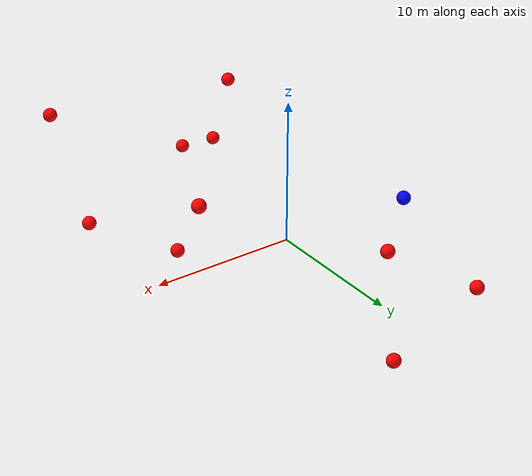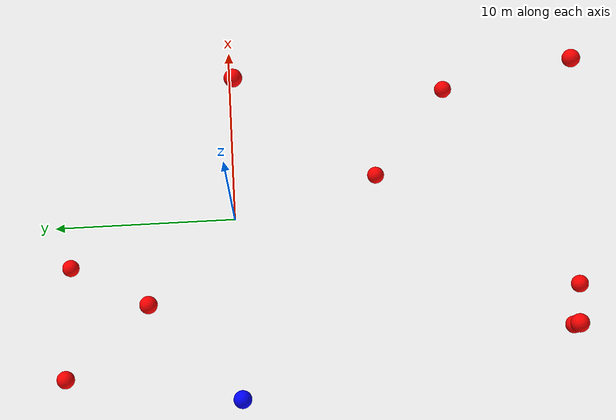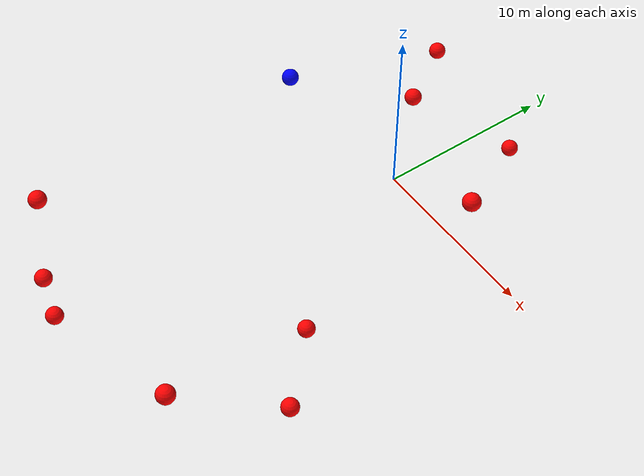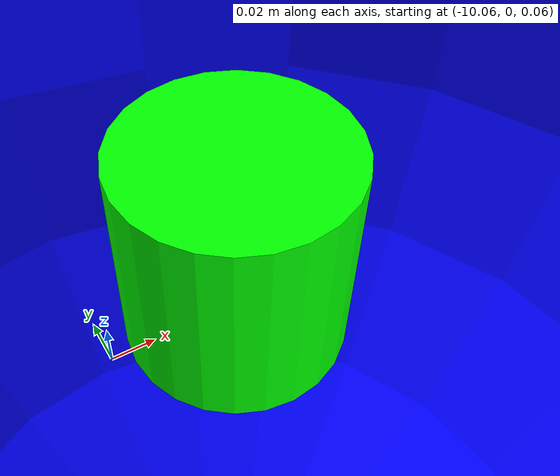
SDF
<?xml version="1.0" ?>
<sdf version="1.8">
    <world name="3d_world">
        <physics name="1ms" type="ode">
            <max_step_size>0.001</max_step_size>
            <real_time_factor>1.0</real_time_factor>
            <real_time_update_rate>1000.0</real_time_update_rate>
        </physics>
        <gravity>0 0 0</gravity>

        <plugin
            filename="gz-sim-physics-system"
            name="gz::sim::v8::systems::Physics">
        </plugin>
        <plugin
            filename="libignition-gazebo-user-commands-system.so"
            name="ignition::gazebo::systems::UserCommands">
        </plugin>
        <plugin
            filename="gz-sim-scene-broadcaster-system"
            name="gz::sim::systems::SceneBroadcaster">
        </plugin>
        <plugin
            filename="gz-sim-sensors-system"
            name="gz::sim::systems::Sensors">
            <render_engine>ogre2</render_engine>
        </plugin>

        <light type="directional" name="sun">
            <cast_shadows>true</cast_shadows>
            <pose>0 0 10 0 0 0</pose>
            <diffuse>0.8 0.8 0.8 1</diffuse>
            <specular>0.2 0.2 0.2 1</specular>
            <attenuation>
                <range>1000</range>
                <constant>0.9</constant>
                <linear>0.01</linear>
                <quadratic>0.001</quadratic>
            </attenuation>
            <direction>-0.5 0.1 -0.9</direction>
        </light>

        <!-- AGENTE -->
        <model name='agente' canonical_link='chassis'>
            <pose relative_to='world'>-10.0 0 0.0 0 0 0</pose>
            <link name='chassis'>
                <pose relative_to='__model__'>0.0 0 0.0 0 0 0</pose>
                <inertial>
                    <mass>1.14395</mass>
                    <inertia>
                        <ixx>0.095329</ixx>
                        <ixy>0</ixy>
                        <ixz>0</ixz>
                        <iyy>0.381317</iyy>
                        <iyz>0</iyz>
                        <izz>0.476646</izz>
                    </inertia>
                </inertial>
                <visual name='visual'>
                    <geometry>
                        <sphere>
                            <radius>0.5</radius>
                        </sphere>
                    </geometry>
                    <material>
                        <ambient>0.0 0.0 1.0 1</ambient>
                        <diffuse>0.0 0.0 1.0 1</diffuse>
                        <specular>0.0 0.0 1.0 1</specular>
                    </material>
                </visual>
                <collision name='collision'>
                    <geometry>
                        <sphere>
                            <radius>0.5</radius>
                        </sphere>
                    </geometry>
                </collision>
                <enable_gravity>false</enable_gravity>
            </link>

            <link name='lidar_link'>
                <pose relative_to='chassis'>0.0 0 0.1 0 0 0</pose>
                <inertial>
                    <mass>0.1</mass>
                    <inertia>
                        <ixx>0.000166667</ixx>
                        <iyy>0.000166667</iyy>
                        <izz>0.000166667</izz>
                    </inertia>
                </inertial>
                <collision name='collision'>
                    <geometry>
                        <cylinder>
                            <radius>0.05</radius>
                            <length>0.1</length>
                        </cylinder>
                    </geometry>
                </collision>
                <visual name='visual'>
                    <geometry>
                        <cylinder>
                            <radius>0.05</radius>
                            <length>0.1</length>
                        </cylinder>
                    </geometry>
                    <material>
                        <ambient>0.0 1.0 0.0 1</ambient>
                        <diffuse>0.0 1.0 0.0 1</diffuse>
                        <specular>0.0 1.0 0.0 1</specular>
                    </material>
                </visual>
                <sensor name="lidar" type="gpu_lidar">
                    <topic>scan</topic>
                    <update_rate>10</update_rate>
                    <lidar>
                        <scan>
                            <horizontal>
                                <samples>5000</samples>
                                <resolution>1</resolution>
                                <min_angle>-3.14159</min_angle>
                                <max_angle>3.14159</max_angle>
                            </horizontal>
                        </scan>
                        <range>
                            <min>0.1</min>
                            <max>10.0</max>
                            <resolution>0.01</resolution>
                        </range>
                    </lidar>
                    <visualize>true</visualize>
                    <always_on>true</always_on>
                    <update_rate>10</update_rate>
                    <pose_frame>lidar</pose_frame>
                </sensor>
                <enable_gravity>false</enable_gravity>
            </link>

            <joint name="lidar_joint" type="fixed">
                <parent>chassis</parent>
                <child>lidar_link</child>
            </joint>

            <plugin
                filename="ignition-gazebo-joint-state-publisher-system"
                name="ignition::gazebo::systems::JointStatePublisher">
            </plugin>
            <plugin
                filename="ignition-gazebo-odometry-publisher-system"
                name="ignition::gazebo::systems::OdometryPublisher">
                <dimensions>3</dimensions>
            </plugin>
            <plugin
                filename="ignition-gazebo-velocity-control-system"
                name="ignition::gazebo::systems::VelocityControl">
                <initial_linear>0.0 0 0</initial_linear>
                <initial_angular>0 0 0.0</initial_angular>
            </plugin>
            <plugin
                filename="libignition-gazebo-pose-publisher-system.so"
                name="ignition::gazebo::systems::PosePublisher">
                <topic>/agente/pose</topic>
                <frame_id>agente</frame_id>
                <update_rate>30</update_rate>
            </plugin>
        </model>

        <!-- OBSTACLE 1 -->
        <model name='obstacle_1' canonical_link='obstacle'>
            <static>false</static>
            <pose relative_to='world'>7.90 -12.49 -1.96 0 0 0</pose>
            <link name='obstacle'>
                <pose relative_to='__model__'>0.0 0 0.0 0 0 0</pose>
                <visual name='visual'>
                    <geometry>
                        <sphere>
                            <radius>0.50</radius>
                        </sphere>
                    </geometry>
                    <material>
                        <ambient>1.0 0.0 0.0 1</ambient>
                        <diffuse>1.0 0.0 0.0 1</diffuse>
                        <specular>1.0 0.0 0.0 1</specular>
                    </material>
                </visual>
                <collision name='collision'>
                    <geometry>
                        <sphere>
                            <radius>0.50</radius>
                        </sphere>
                    </geometry>
                </collision>
                <enable_gravity>false</enable_gravity>
            </link>

            <plugin
                filename="ignition-gazebo-velocity-control-system"
                name="ignition::gazebo::systems::VelocityControl">
                <initial_linear>-0.96 1.73 0.27</initial_linear>
                <initial_angular>0 0 0</initial_angular>
            </plugin>

            <plugin
                filename="ignition-gazebo-odometry-publisher-system"
                name="ignition::gazebo::systems::OdometryPublisher">
                <dimensions>3</dimensions>
            </plugin>
        </model>

        <!-- OBSTACLE 2 -->
        <model name='obstacle_2' canonical_link='obstacle'>
            <static>false</static>
            <pose relative_to='world'>-8.16 9.76 -1.67 0 0 0</pose>
            <link name='obstacle'>
                <pose relative_to='__model__'>0.0 0 0.0 0 0 0</pose>
                <visual name='visual'>
                    <geometry>
                        <sphere>
                            <radius>0.50</radius>
                        </sphere>
                    </geometry>
                    <material>
                        <ambient>1.0 0.0 0.0 1</ambient>
                        <diffuse>1.0 0.0 0.0 1</diffuse>
                        <specular>1.0 0.0 0.0 1</specular>
                    </material>
                </visual>
                <collision name='collision'>
                    <geometry>
                        <sphere>
                            <radius>0.50</radius>
                        </sphere>
                    </geometry>
                </collision>
                <enable_gravity>false</enable_gravity>
            </link>

            <plugin
                filename="ignition-gazebo-velocity-control-system"
                name="ignition::gazebo::systems::VelocityControl">
                <initial_linear>1.56 -1.23 0.21</initial_linear>
                <initial_angular>0 0 0</initial_angular>
            </plugin>

            <plugin
                filename="ignition-gazebo-odometry-publisher-system"
                name="ignition::gazebo::systems::OdometryPublisher">
                <dimensions>3</dimensions>
            </plugin>
        </model>

        <!-- OBSTACLE 3 -->
        <model name='obstacle_3' canonical_link='obstacle'>
            <static>false</static>
            <pose relative_to='world'>-1.14 10.00 -4.49 0 0 0</pose>
            <link name='obstacle'>
                <pose relative_to='__model__'>0.0 0 0.0 0 0 0</pose>
                <visual name='visual'>
                    <geometry>
                        <sphere>
                            <radius>0.50</radius>
                        </sphere>
                    </geometry>
                    <material>
                        <ambient>1.0 0.0 0.0 1</ambient>
                        <diffuse>1.0 0.0 0.0 1</diffuse>
                        <specular>1.0 0.0 0.0 1</specular>
                    </material>
                </visual>
                <collision name='collision'>
                    <geometry>
                        <sphere>
                            <radius>0.50</radius>
                        </sphere>
                    </geometry>
                </collision>
                <enable_gravity>false</enable_gravity>
            </link>

            <plugin
                filename="ignition-gazebo-velocity-control-system"
                name="ignition::gazebo::systems::VelocityControl">
                <initial_linear>1.02 -1.57 0.71</initial_linear>
                <initial_angular>0 0 0</initial_angular>
            </plugin>

            <plugin
                filename="ignition-gazebo-odometry-publisher-system"
                name="ignition::gazebo::systems::OdometryPublisher">
                <dimensions>3</dimensions>
            </plugin>
        </model>

        <!-- OBSTACLE 4 -->
        <model name='obstacle_4' canonical_link='obstacle'>
            <static>false</static>
            <pose relative_to='world'>6.62 -0.38 4.48 0 0 0</pose>
            <link name='obstacle'>
                <pose relative_to='__model__'>0.0 0 0.0 0 0 0</pose>
                <visual name='visual'>
                    <geometry>
                        <sphere>
                            <radius>0.50</radius>
                        </sphere>
                    </geometry>
                    <material>
                        <ambient>1.0 0.0 0.0 1</ambient>
                        <diffuse>1.0 0.0 0.0 1</diffuse>
                        <specular>1.0 0.0 0.0 1</specular>
                    </material>
                </visual>
                <collision name='collision'>
                    <geometry>
                        <sphere>
                            <radius>0.50</radius>
                        </sphere>
                    </geometry>
                </collision>
                <enable_gravity>false</enable_gravity>
            </link>

            <plugin
                filename="ignition-gazebo-velocity-control-system"
                name="ignition::gazebo::systems::VelocityControl">
                <initial_linear>-0.58 0.07 -0.83</initial_linear>
                <initial_angular>0 0 0</initial_angular>
            </plugin>

            <plugin
                filename="ignition-gazebo-odometry-publisher-system"
                name="ignition::gazebo::systems::OdometryPublisher">
                <dimensions>3</dimensions>
            </plugin>
        </model>

        <!-- OBSTACLE 5 -->
        <model name='obstacle_5' canonical_link='obstacle'>
            <static>false</static>
            <pose relative_to='world'>-7.44 -17.75 3.01 0 0 0</pose>
            <link name='obstacle'>
                <pose relative_to='__model__'>0.0 0 0.0 0 0 0</pose>
                <visual name='visual'>
                    <geometry>
                        <sphere>
                            <radius>0.50</radius>
                        </sphere>
                    </geometry>
                    <material>
                        <ambient>1.0 0.0 0.0 1</ambient>
                        <diffuse>1.0 0.0 0.0 1</diffuse>
                        <specular>1.0 0.0 0.0 1</specular>
                    </material>
                </visual>
                <collision name='collision'>
                    <geometry>
                        <sphere>
                            <radius>0.50</radius>
                        </sphere>
                    </geometry>
                </collision>
                <enable_gravity>false</enable_gravity>
            </link>

            <plugin
                filename="ignition-gazebo-velocity-control-system"
                name="ignition::gazebo::systems::VelocityControl">
                <initial_linear>0.94 1.74 -0.30</initial_linear>
                <initial_angular>0 0 0</initial_angular>
            </plugin>

            <plugin
                filename="ignition-gazebo-odometry-publisher-system"
                name="ignition::gazebo::systems::OdometryPublisher">
                <dimensions>3</dimensions>
            </plugin>
        </model>

        <!-- OBSTACLE 6 -->
        <model name='obstacle_6' canonical_link='obstacle'>
            <static>false</static>
            <pose relative_to='world'>-4.56 4.94 -0.06 0 0 0</pose>
            <link name='obstacle'>
                <pose relative_to='__model__'>0.0 0 0.0 0 0 0</pose>
                <visual name='visual'>
                    <geometry>
                        <sphere>
                            <radius>0.50</radius>
                        </sphere>
                    </geometry>
                    <material>
                        <ambient>1.0 0.0 0.0 1</ambient>
                        <diffuse>1.0 0.0 0.0 1</diffuse>
                        <specular>1.0 0.0 0.0 1</specular>
                    </material>
                </visual>
                <collision name='collision'>
                    <geometry>
                        <sphere>
                            <radius>0.50</radius>
                        </sphere>
                    </geometry>
                </collision>
                <enable_gravity>false</enable_gravity>
            </link>

            <plugin
                filename="ignition-gazebo-velocity-control-system"
                name="ignition::gazebo::systems::VelocityControl">
                <initial_linear>1.34 -1.05 0.01</initial_linear>
                <initial_angular>0 0 0</initial_angular>
            </plugin>

            <plugin
                filename="ignition-gazebo-odometry-publisher-system"
                name="ignition::gazebo::systems::OdometryPublisher">
                <dimensions>3</dimensions>
            </plugin>
        </model>

        <!-- OBSTACLE 7 -->
        <model name='obstacle_7' canonical_link='obstacle'>
            <static>false</static>
            <pose relative_to='world'>7.10 -18.86 3.64 0 0 0</pose>
            <link name='obstacle'>
                <pose relative_to='__model__'>0.0 0 0.0 0 0 0</pose>
                <visual name='visual'>
                    <geometry>
                        <sphere>
                            <radius>0.50</radius>
                        </sphere>
                    </geometry>
                    <material>
                        <ambient>1.0 0.0 0.0 1</ambient>
                        <diffuse>1.0 0.0 0.0 1</diffuse>
                        <specular>1.0 0.0 0.0 1</specular>
                    </material>
                </visual>
                <collision name='collision'>
                    <geometry>
                        <sphere>
                            <radius>0.50</radius>
                        </sphere>
                    </geometry>
                </collision>
                <enable_gravity>false</enable_gravity>
            </link>

            <plugin
                filename="ignition-gazebo-velocity-control-system"
                name="ignition::gazebo::systems::VelocityControl">
                <initial_linear>-0.41 1.92 -0.37</initial_linear>
                <initial_angular>0 0 0</initial_angular>
            </plugin>

            <plugin
                filename="ignition-gazebo-odometry-publisher-system"
                name="ignition::gazebo::systems::OdometryPublisher">
                <dimensions>3</dimensions>
            </plugin>
        </model>

        <!-- OBSTACLE 8 -->
        <model name='obstacle_8' canonical_link='obstacle'>
            <static>false</static>
            <pose relative_to='world'>-6.59 -18.62 -2.01 0 0 0</pose>
            <link name='obstacle'>
                <pose relative_to='__model__'>0.0 0 0.0 0 0 0</pose>
                <visual name='visual'>
                    <geometry>
                        <sphere>
                            <radius>0.50</radius>
                        </sphere>
                    </geometry>
                    <material>
                        <ambient>1.0 0.0 0.0 1</ambient>
                        <diffuse>1.0 0.0 0.0 1</diffuse>
                        <specular>1.0 0.0 0.0 1</specular>
                    </material>
                </visual>
                <collision name='collision'>
                    <geometry>
                        <sphere>
                            <radius>0.50</radius>
                        </sphere>
                    </geometry>
                </collision>
                <enable_gravity>false</enable_gravity>
            </link>

            <plugin
                filename="ignition-gazebo-velocity-control-system"
                name="ignition::gazebo::systems::VelocityControl">
                <initial_linear>0.43 1.94 0.21</initial_linear>
                <initial_angular>0 0 0</initial_angular>
            </plugin>

            <plugin
                filename="ignition-gazebo-odometry-publisher-system"
                name="ignition::gazebo::systems::OdometryPublisher">
                <dimensions>3</dimensions>
            </plugin>
        </model>

        <!-- OBSTACLE 9 -->
        <model name='obstacle_9' canonical_link='obstacle'>
            <static>false</static>
            <pose relative_to='world'>-4.22 -19.28 -2.29 0 0 0</pose>
            <link name='obstacle'>
                <pose relative_to='__model__'>0.0 0 0.0 0 0 0</pose>
                <visual name='visual'>
                    <geometry>
                        <sphere>
                            <radius>0.50</radius>
                        </sphere>
                    </geometry>
                    <material>
                        <ambient>1.0 0.0 0.0 1</ambient>
                        <diffuse>1.0 0.0 0.0 1</diffuse>
                        <specular>1.0 0.0 0.0 1</specular>
                    </material>
                </visual>
                <collision name='collision'>
                    <geometry>
                        <sphere>
                            <radius>0.50</radius>
                        </sphere>
                    </geometry>
                </collision>
                <enable_gravity>false</enable_gravity>
            </link>

            <plugin
                filename="ignition-gazebo-velocity-control-system"
                name="ignition::gazebo::systems::VelocityControl">
                <initial_linear>0.99 1.73 0.21</initial_linear>
                <initial_angular>0 0 0</initial_angular>
            </plugin>

            <plugin
                filename="ignition-gazebo-odometry-publisher-system"
                name="ignition::gazebo::systems::OdometryPublisher">
                <dimensions>3</dimensions>
            </plugin>
        </model>

        <!-- OBSTACLE 10 -->
        <model name='obstacle_10' canonical_link='obstacle'>
            <static>false</static>
            <pose relative_to='world'>3.35 -8.27 -3.68 0 0 0</pose>
            <link name='obstacle'>
                <pose relative_to='__model__'>0.0 0 0.0 0 0 0</pose>
                <visual name='visual'>
                    <geometry>
                        <sphere>
                            <radius>0.50</radius>
                        </sphere>
                    </geometry>
                    <material>
                        <ambient>1.0 0.0 0.0 1</ambient>
                        <diffuse>1.0 0.0 0.0 1</diffuse>
                        <specular>1.0 0.0 0.0 1</specular>
                    </material>
                </visual>
                <collision name='collision'>
                    <geometry>
                        <sphere>
                            <radius>0.50</radius>
                        </sphere>
                    </geometry>
                </collision>
                <enable_gravity>false</enable_gravity>
            </link>

            <plugin
                filename="ignition-gazebo-velocity-control-system"
                name="ignition::gazebo::systems::VelocityControl">
                <initial_linear>0.33 1.34 0.60</initial_linear>
                <initial_angular>0 0 0</initial_angular>
            </plugin>

            <plugin
                filename="ignition-gazebo-odometry-publisher-system"
                name="ignition::gazebo::systems::OdometryPublisher">
                <dimensions>3</dimensions>
            </plugin>
        </model>

    </world>
</sdf>
